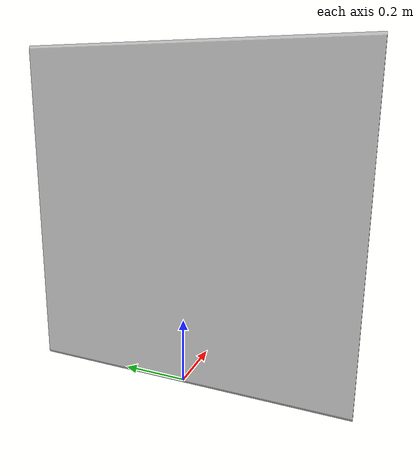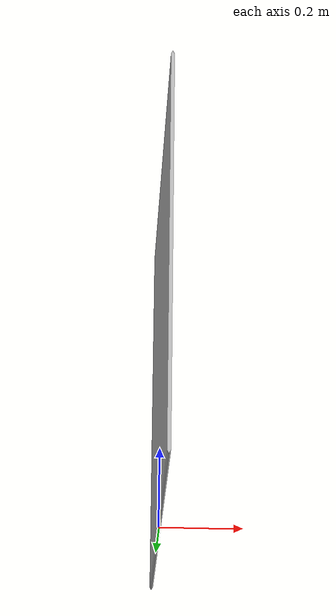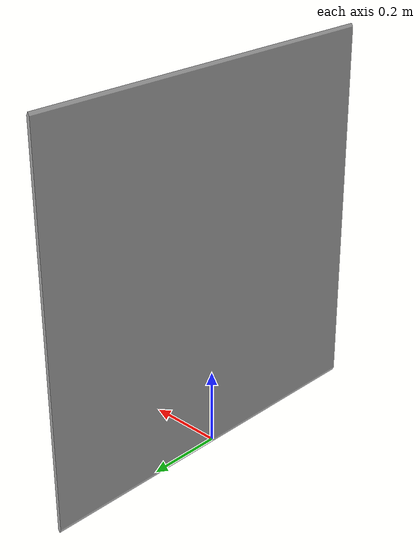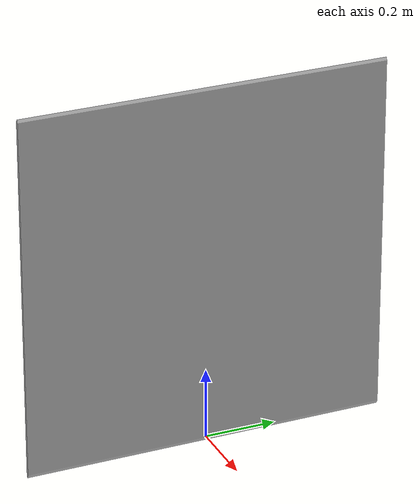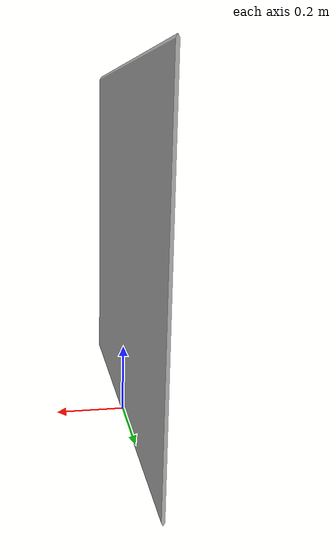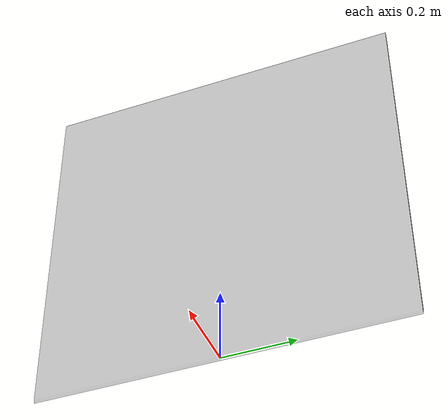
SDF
<?xml version="1.0" ?>
<sdf version="1.5">
  <model name="nist_maze_wall_100">
    <static>true</static>
    <link name="nist_maze_wall_100_link">
      <collision name="collision">
        <pose>0 0 0 0 0 0</pose>
        <geometry>
          <mesh>
            <uri>meshes/nist_maze_wall_100.dae</uri>
            <scale>1 1 1</scale>
          </mesh>
        </geometry>
      </collision>
      <visual name="visual">
        <pose>0 0 0 0 0 0</pose>
        <geometry>
          <mesh>
            <uri>meshes/nist_maze_wall_100.dae</uri>
            <scale>1 1 1</scale>
          </mesh>
        </geometry>
      </visual>
    </link>
  </model>
</sdf>
